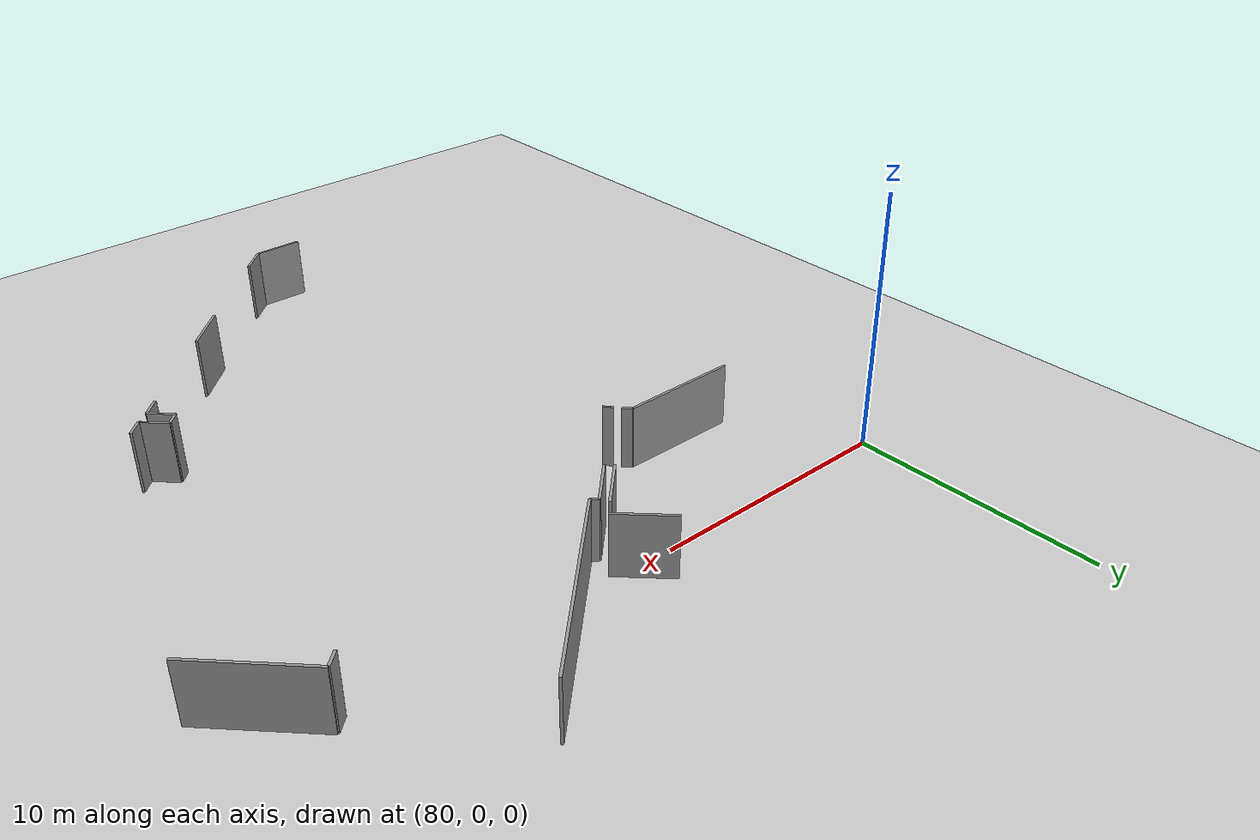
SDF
<sdf version="1.6">
 <world name="default">
  <model name="ground_plane">
   <static>1</static>
   <link name="link">
    <collision name="collision">
     <geometry><plane><normal>0 0 1</normal><size>100 100</size></plane></geometry>
     <surface><friction><ode><mu>100</mu><mu2>50</mu2></ode></friction></surface>
    </collision>
    <visual name="visual">
     <cast_shadows>0</cast_shadows>
     <geometry><plane><normal>0 0 1</normal><size>100 100</size></plane></geometry>
     <material>
      <script><uri>file://media/materials/scripts/gazebo.material</uri><name>Gazebo/Grey</name></script>
     </material>
    </visual>
   </link>
  </model>
  <model name="0510035342_A_40_1_101">
   <static>1</static>
   <link name="Wall_496">
    <collision name="Wall_496_Collision">
     <geometry><box><size>0.382111247562 0.1 2.5</size></box></geometry>
     <pose>0.191055623781 0 1.25 0 0 0</pose>
    </collision>
    <visual name="Wall_496_Visual">
     <pose>0.191055623781 0 1.25 0 0 0</pose>
     <geometry><box><size>0.382111247562 0.1 2.5</size></box></geometry>
     <material>
      <script><uri>file://media/materials/scripts/gazebo.material</uri><name>Gazebo/Grey</name></script>
      <ambient>1 1 1 1</ambient>
     </material>
    </visual>
    <pose>203.951539165 -30.7010057909 0 0 0 2.33222165062</pose>
   </link>
   <link name="Wall_497">
    <collision name="Wall_497_Collision">
     <geometry><box><size>2.00551733365 0.1 2.5</size></box></geometry>
     <pose>1.00275866683 0 1.25 0 0 0</pose>
    </collision>
    <visual name="Wall_497_Visual">
     <pose>1.00275866683 0 1.25 0 0 0</pose>
     <geometry><box><size>2.00551733365 0.1 2.5</size></box></geometry>
     <material>
      <script><uri>file://media/materials/scripts/gazebo.material</uri><name>Gazebo/Grey</name></script>
      <ambient>1 1 1 1</ambient>
     </material>
    </visual>
    <pose>206.392360053 -27.856598598 0 0 0 0.77339802299</pose>
   </link>
   <link name="Wall_498">
    <collision name="Wall_498_Collision">
     <geometry><box><size>0.319823145229 0.1 2.5</size></box></geometry>
     <pose>0.159911572615 0 1.25 0 0 0</pose>
    </collision>
    <visual name="Wall_498_Visual">
     <pose>0.159911572615 0 1.25 0 0 0</pose>
     <geometry><box><size>0.319823145229 0.1 2.5</size></box></geometry>
     <material>
      <script><uri>file://media/materials/scripts/gazebo.material</uri><name>Gazebo/Grey</name></script>
      <ambient>1 1 1 1</ambient>
     </material>
    </visual>
    <pose>207.827390023 -26.4556029666 0 0 0 -0.640006840931</pose>
   </link>
   <link name="Wall_499">
    <collision name="Wall_499_Collision">
     <geometry><box><size>8.36979004162 0.1 2.5</size></box></geometry>
     <pose>4.18489502081 0 1.25 0 0 0</pose>
    </collision>
    <visual name="Wall_499_Visual">
     <pose>4.18489502081 0 1.25 0 0 0</pose>
     <geometry><box><size>8.36979004162 0.1 2.5</size></box></geometry>
     <material>
      <script><uri>file://media/materials/scripts/gazebo.material</uri><name>Gazebo/Grey</name></script>
      <ambient>1 1 1 1</ambient>
     </material>
    </visual>
    <pose>208.083917505 -26.6466016458 0 0 0 0.763337869064</pose>
   </link>
   <link name="Wall_504">
    <collision name="Wall_504_Collision">
     <geometry><box><size>0.679823814854 0.1 2.5</size></box></geometry>
     <pose>0.339911907427 0 1.25 0 0 0</pose>
    </collision>
    <visual name="Wall_504_Visual">
     <pose>0.339911907427 0 1.25 0 0 0</pose>
     <geometry><box><size>0.679823814854 0.1 2.5</size></box></geometry>
     <material>
      <script><uri>file://media/materials/scripts/gazebo.material</uri><name>Gazebo/Grey</name></script>
      <ambient>1 1 1 1</ambient>
     </material>
    </visual>
    <pose>218.047851265 -25.836127197 0 0 0 0.732537401155</pose>
   </link>
   <link name="Wall_505">
    <collision name="Wall_505_Collision">
     <geometry><box><size>4.47660852626 0.1 2.5</size></box></geometry>
     <pose>2.23830426313 0 1.25 0 0 0</pose>
    </collision>
    <visual name="Wall_505_Visual">
     <pose>2.23830426313 0 1.25 0 0 0</pose>
     <geometry><box><size>4.47660852626 0.1 2.5</size></box></geometry>
     <material>
      <script><uri>file://media/materials/scripts/gazebo.material</uri><name>Gazebo/Grey</name></script>
      <ambient>1 1 1 1</ambient>
     </material>
    </visual>
    <pose>218.5532866 -25.3814893833 0 0 0 -0.800764285259</pose>
   </link>
   <link name="Wall_508">
    <collision name="Wall_508_Collision">
     <geometry><box><size>0.748615875158 0.1 2.5</size></box></geometry>
     <pose>0.374307937579 0 1.25 0 0 0</pose>
    </collision>
    <visual name="Wall_508_Visual">
     <pose>0.374307937579 0 1.25 0 0 0</pose>
     <geometry><box><size>0.748615875158 0.1 2.5</size></box></geometry>
     <material>
      <script><uri>file://media/materials/scripts/gazebo.material</uri><name>Gazebo/Grey</name></script>
      <ambient>1 1 1 1</ambient>
     </material>
    </visual>
    <pose>217.326526466 -40.2417962003 0 0 0 -2.36866985063</pose>
   </link>
   <link name="Wall_509">
    <collision name="Wall_509_Collision">
     <geometry><box><size>1.12019962843 0.1 2.5</size></box></geometry>
     <pose>0.560099814214 0 1.25 0 0 0</pose>
    </collision>
    <visual name="Wall_509_Visual">
     <pose>0.560099814214 0 1.25 0 0 0</pose>
     <geometry><box><size>1.12019962843 0.1 2.5</size></box></geometry>
     <material>
      <script><uri>file://media/materials/scripts/gazebo.material</uri><name>Gazebo/Grey</name></script>
      <ambient>1 1 1 1</ambient>
     </material>
    </visual>
    <pose>216.790612618 -40.7645026923 0 0 0 2.36629515678</pose>
   </link>
   <link name="Wall_510">
    <collision name="Wall_510_Collision">
     <geometry><box><size>0.585217647197 0.1 2.5</size></box></geometry>
     <pose>0.292608823598 0 1.25 0 0 0</pose>
    </collision>
    <visual name="Wall_510_Visual">
     <pose>0.292608823598 0 1.25 0 0 0</pose>
     <geometry><box><size>0.585217647197 0.1 2.5</size></box></geometry>
     <material>
      <script><uri>file://media/materials/scripts/gazebo.material</uri><name>Gazebo/Grey</name></script>
      <ambient>1 1 1 1</ambient>
     </material>
    </visual>
    <pose>215.990551661 -39.9804429544 0 0 0 -2.33839403777</pose>
   </link>
   <link name="Wall_511">
    <collision name="Wall_511_Collision">
     <geometry><box><size>1.03739731804 0.1 2.5</size></box></geometry>
     <pose>0.51869865902 0 1.25 0 0 0</pose>
    </collision>
    <visual name="Wall_511_Visual">
     <pose>0.51869865902 0 1.25 0 0 0</pose>
     <geometry><box><size>1.03739731804 0.1 2.5</size></box></geometry>
     <material>
      <script><uri>file://media/materials/scripts/gazebo.material</uri><name>Gazebo/Grey</name></script>
      <ambient>1 1 1 1</ambient>
     </material>
    </visual>
    <pose>215.584171492 -40.4015544041 0 0 0 -0.795093150492</pose>
   </link>
   <link name="Wall_512">
    <collision name="Wall_512_Collision">
     <geometry><box><size>0.852064481534 0.1 2.5</size></box></geometry>
     <pose>0.426032240767 0 1.25 0 0 0</pose>
    </collision>
    <visual name="Wall_512_Visual">
     <pose>0.426032240767 0 1.25 0 0 0</pose>
     <geometry><box><size>0.852064481534 0.1 2.5</size></box></geometry>
     <material>
      <script><uri>file://media/materials/scripts/gazebo.material</uri><name>Gazebo/Grey</name></script>
      <ambient>1 1 1 1</ambient>
     </material>
    </visual>
    <pose>216.310576044 -41.1421822615 0 0 0 -2.36799832644</pose>
   </link>
   <link name="Wall_513">
    <collision name="Wall_513_Collision">
     <geometry><box><size>2.1985429003 0.1 2.5</size></box></geometry>
     <pose>1.09927145015 0 1.25 0 0 0</pose>
    </collision>
    <visual name="Wall_513_Visual">
     <pose>1.09927145015 0 1.25 0 0 0</pose>
     <geometry><box><size>2.1985429003 0.1 2.5</size></box></geometry>
     <material>
      <script><uri>file://media/materials/scripts/gazebo.material</uri><name>Gazebo/Grey</name></script>
      <ambient>1 1 1 1</ambient>
     </material>
    </visual>
    <pose>212.462663822 -44.9177080158 0 0 0 -2.36591561195</pose>
   </link>
   <link name="Wall_514">
    <collision name="Wall_514_Collision">
     <geometry><box><size>1.32432810339 0.1 2.5</size></box></geometry>
     <pose>0.662164051694 0 1.25 0 0 0</pose>
    </collision>
    <visual name="Wall_514_Visual">
     <pose>0.662164051694 0 1.25 0 0 0</pose>
     <geometry><box><size>1.32432810339 0.1 2.5</size></box></geometry>
     <material>
      <script><uri>file://media/materials/scripts/gazebo.material</uri><name>Gazebo/Grey</name></script>
      <ambient>1 1 1 1</ambient>
     </material>
    </visual>
    <pose>207.596261302 -49.6665142741 0 0 0 -2.37897947748</pose>
   </link>
   <link name="Wall_515">
    <collision name="Wall_515_Collision">
     <geometry><box><size>1.98364319821 0.1 2.5</size></box></geometry>
     <pose>0.991821599106 0 1.25 0 0 0</pose>
    </collision>
    <visual name="Wall_515_Visual">
     <pose>0.991821599106 0 1.25 0 0 0</pose>
     <geometry><box><size>1.98364319821 0.1 2.5</size></box></geometry>
     <material>
      <script><uri>file://media/materials/scripts/gazebo.material</uri><name>Gazebo/Grey</name></script>
      <ambient>1 1 1 1</ambient>
     </material>
    </visual>
    <pose>206.63872803 -50.5813776288 0 0 0 3.14159265359</pose>
   </link>
   <link name="Wall_546">
    <collision name="Wall_546_Collision">
     <geometry><box><size>2.31034944184 0.1 2.5</size></box></geometry>
     <pose>1.15517472092 0 1.25 0 0 0</pose>
    </collision>
    <visual name="Wall_546_Visual">
     <pose>1.15517472092 0 1.25 0 0 0</pose>
     <geometry><box><size>2.31034944184 0.1 2.5</size></box></geometry>
     <material>
      <script><uri>file://media/materials/scripts/gazebo.material</uri><name>Gazebo/Grey</name></script>
      <ambient>1 1 1 1</ambient>
     </material>
    </visual>
    <pose>208.149954282 -25.6618916997 0 0 0 2.36054769652</pose>
   </link>
   <link name="Wall_549">
    <collision name="Wall_549_Collision">
     <geometry><box><size>2.13597628041 0.1 2.5</size></box></geometry>
     <pose>1.06798814021 0 1.25 0 0 0</pose>
    </collision>
    <visual name="Wall_549_Visual">
     <pose>1.06798814021 0 1.25 0 0 0</pose>
     <geometry><box><size>2.13597628041 0.1 2.5</size></box></geometry>
     <material>
      <script><uri>file://media/materials/scripts/gazebo.material</uri><name>Gazebo/Grey</name></script>
      <ambient>1 1 1 1</ambient>
     </material>
    </visual>
    <pose>207.669917708 -26.1266890176 0 0 0 -2.37545037243</pose>
   </link>
   <link name="Wall_550">
    <collision name="Wall_550_Collision">
     <geometry><box><size>0.396085262646 0.1 2.5</size></box></geometry>
     <pose>0.198042631323 0 1.25 0 0 0</pose>
    </collision>
    <visual name="Wall_550_Visual">
     <pose>0.198042631323 0 1.25 0 0 0</pose>
     <geometry><box><size>0.396085262646 0.1 2.5</size></box></geometry>
     <material>
      <script><uri>file://media/materials/scripts/gazebo.material</uri><name>Gazebo/Grey</name></script>
      <ambient>1 1 1 1</ambient>
     </material>
    </visual>
    <pose>203.512140608 -30.1719496089 0 0 0 2.37569315249</pose>
   </link>
   <link name="Wall_551">
    <collision name="Wall_551_Collision">
     <geometry><box><size>4.67768972874 0.1 2.5</size></box></geometry>
     <pose>2.33884486437 0 1.25 0 0 0</pose>
    </collision>
    <visual name="Wall_551_Visual">
     <pose>2.33884486437 0 1.25 0 0 0</pose>
     <geometry><box><size>4.67768972874 0.1 2.5</size></box></geometry>
     <material>
      <script><uri>file://media/materials/scripts/gazebo.material</uri><name>Gazebo/Grey</name></script>
      <ambient>1 1 1 1</ambient>
     </material>
    </visual>
    <pose>203.226658539 -29.8973890074 0 0 0 3.14159265359</pose>
   </link>
   <pose>-115.7 25.291537133 0 0 0 0</pose>
  </model>
 </world>
</sdf>
